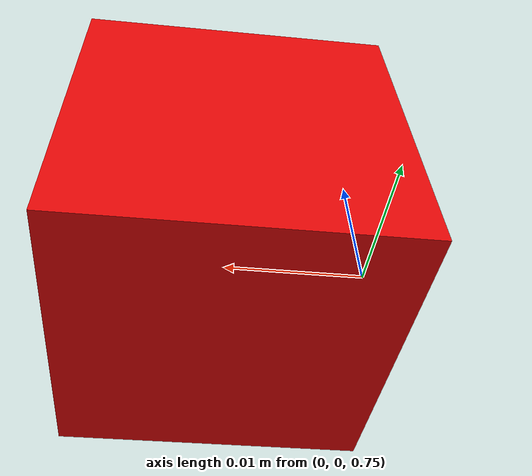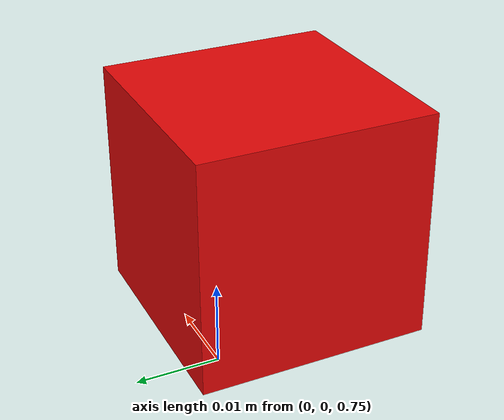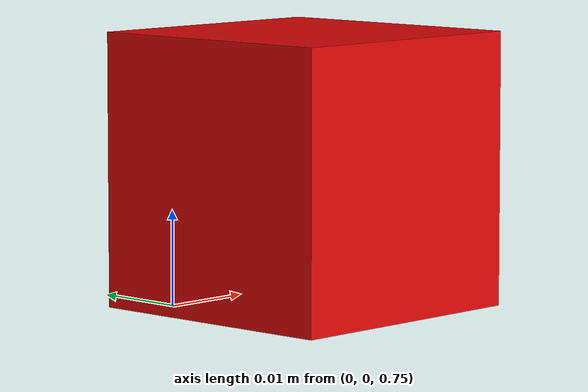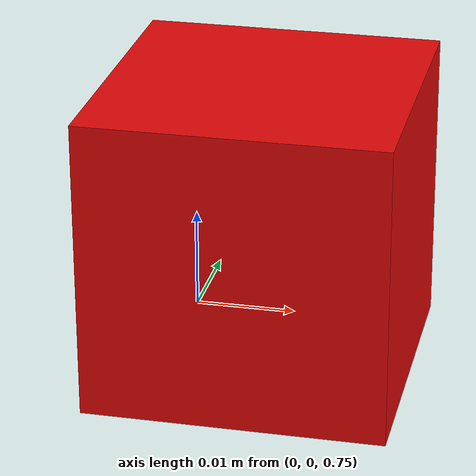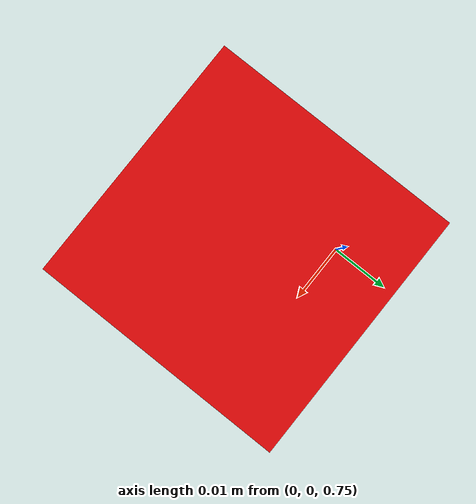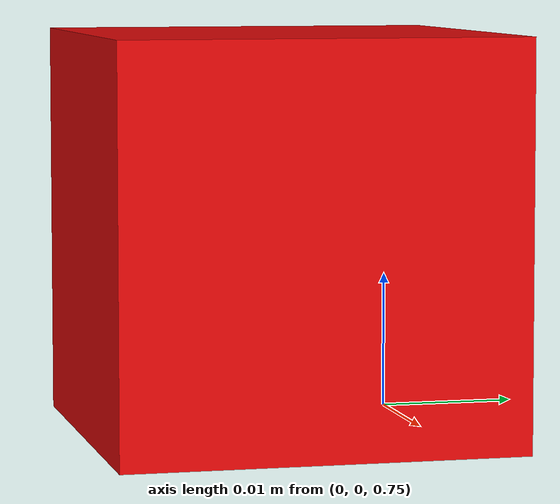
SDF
<?xml version='1.0' encoding='utf-8'?>
<sdf version="1.9"><model name="wood_block">
      <pose>0.009068 -0.010174 0.764283 0 -0 -0</pose>
      <link name="block_link">
        <inertial>
          <mass>0.037099399999999998</mass>
          <inertia>
            <ixx>5.0453200000000003e-06</ixx>
            <iyy>5.0453200000000003e-06</iyy>
            <izz>5.0453200000000003e-06</izz>
            <ixy>0</ixy>
            <ixz>0</ixz>
            <iyz>0</iyz>
          </inertia>
          <pose>0 0 0 0 -0 0</pose>
        </inertial>
        <collision name="block_collision">
          <geometry>
            <box>
              <size>0.028565 0.028565 0.028565</size>
            </box>
          </geometry>
          <max_contacts>20</max_contacts>
          <surface>
            <friction>
              <ode>
                <mu>7.7843147582976648</mu>
                <mu2>5.2618962609393725</mu2>
                <slip1>0</slip1>
                <slip2>0</slip2>
              </ode>
            </friction>
            <contact>
              <collide_without_contact>false</collide_without_contact>
              <poissons_ratio>0.34999999999999998</poissons_ratio>
              <elastic_modulus>100000000</elastic_modulus>
              <ode>
                <kp>100000</kp>
                <kd>10</kd>
                <max_vel>0.02</max_vel>
                <min_depth>0.0001</min_depth>
              </ode>
            </contact>
            <bounce />
          </surface>
        </collision>
        <visual name="block_visual">
          <geometry>
            <box>
              <size>0.028565 0.028565 0.028565</size>
            </box>
          </geometry>
          <material>
            <ambient>0.45 0.01 0.01 1</ambient>
            <diffuse>0.9 0.03 0.03 1</diffuse>
            <specular>0.06 0.04 0.04 1</specular>
            <emissive>0 0 0 1</emissive>
          </material>
        </visual>
        <sensor name="day3_v5_block_contact" type="contact">
          <always_on>true</always_on>
          <update_rate>125</update_rate>
          <visualize>false</visualize>
          <topic>/day3_v5/block/contacts</topic>
          <contact>
            <collision>block_collision</collision>
            <topic>__default_topic__</topic>
          </contact>
        </sensor>
        <pose>0 0 0 0 -0 0</pose>
        <enable_wind>false</enable_wind>
      </link>
      <plugin name="ignition::gazebo::systems::OdometryPublisher" filename="ignition-gazebo-odometry-publisher-system">
        <dimensions>3</dimensions>
        <odom_publish_frequency>50</odom_publish_frequency>
        <odom_topic>/day3_v5/block/odometry</odom_topic>
        <odom_frame>world</odom_frame>
        <robot_base_frame>block_link</robot_base_frame>
        <tf_topic>/day3_v5/block/odometry_tf</tf_topic>
      </plugin>
      <static>false</static>
      <self_collide>false</self_collide>
    </model>
    </sdf>
